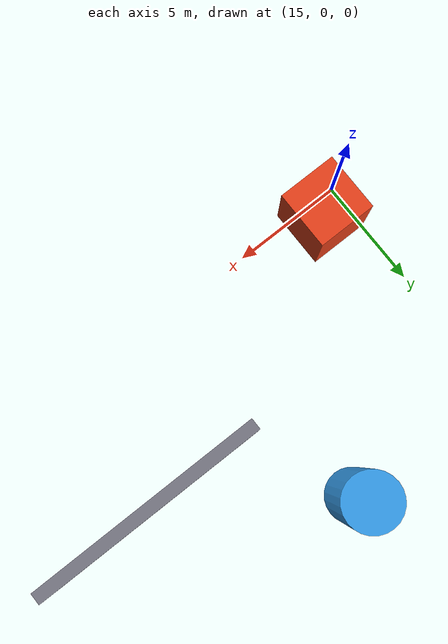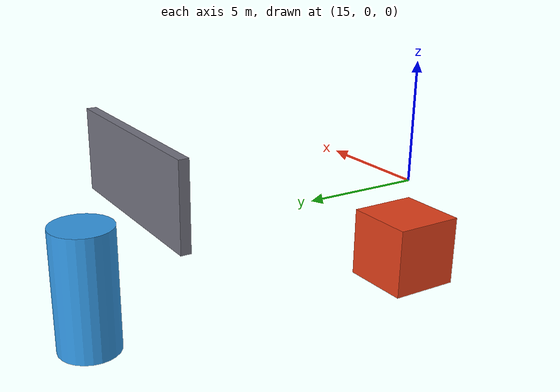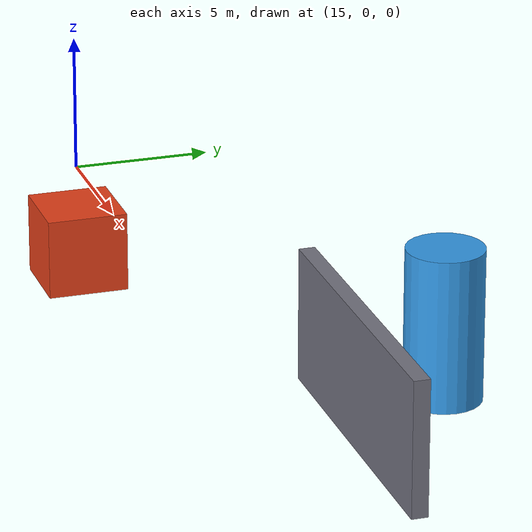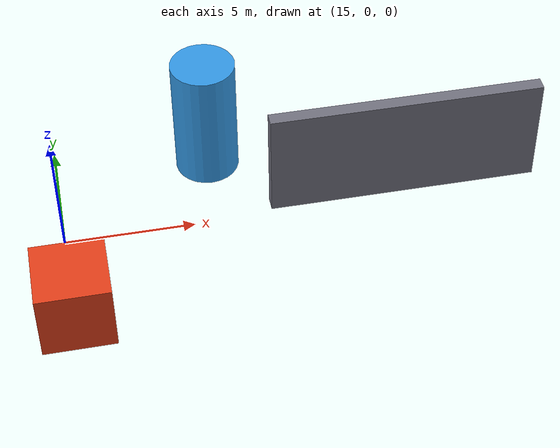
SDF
<?xml version="1.0" ?>
<sdf version="1.6">
  <world name="test_world">
    <physics name="default" type="dartsim">
      <max_step_size>0.001</max_step_size>
      <real_time_factor>1.0</real_time_factor>
    </physics>
    <plugin filename="gz-sim-physics-system" name="gz::sim::systems::Physics"/>
    <plugin filename="gz-sim-user-commands-system" name="gz::sim::systems::UserCommands"/>
    <plugin filename="gz-sim-scene-broadcaster-system" name="gz::sim::systems::SceneBroadcaster"/>
    <plugin filename="gz-sim-buoyancy-system" name="gz::sim::systems::Buoyancy">
      <uniform_fluid_density>1000</uniform_fluid_density>
    </plugin>
    <plugin filename="gz-sim-apply-link-wrench-system" name="gz::sim::systems::ApplyLinkWrench"/>
    <plugin filename="gz-sim-imu-system" name="gz::sim::systems::Imu"/>
    <plugin filename="gz-sim-magnetometer-system" name="gz::sim::systems::Magnetometer"/>
    <plugin filename="gz-sim-sensors-system" name="gz::sim::systems::Sensors">
      <render_engine>ogre2</render_engine>
    </plugin>
    <light type="directional" name="sun">
      <pose>0 0 10 0 0 0</pose>
      <diffuse>1 1 1 1</diffuse>
      <specular>0.5 0.5 0.5 1</specular>
      <attenuation><range>1000</range><constant>0.9</constant><linear>0.01</linear><quadratic>0.001</quadratic></attenuation>
      <direction>-0.5 0.1 -0.9</direction>
    </light>

    <!-- ===== СЦЕНАРИЙ 5: блок ровно по курсу старт(0,0)->WP1(30,0,-3) ===== -->
    <!-- Куб 3×3×3, центр на линии маршрута (15,0,-3). Аппарат должен ОБОЙТИ. -->
    <model name="demo_block"><static>true</static><pose>15.0 0 -3.0 0 0 0</pose><link name="link"><visual name="visual"><geometry><box><size>3.0 3.0 3.0</size></box></geometry><material><ambient>0.9 0.25 0.1 1</ambient><diffuse>0.9 0.25 0.1 1</diffuse></material></visual><collision name="collision"><geometry><box><size>3.0 3.0 3.0</size></box></geometry></collision></link></model>

    <!-- ===== СЦЕНАРИЙ 6: стена поперёк WP1(30,0,-3)->WP2(30,12,-7) ===== -->
    <!-- Стена 12×0.6×5 на (30,6,-3): проверка выбора стороны и прохода мимо. -->
    <model name="demo_wall"><static>true</static><pose>30.0 6.0 -3.0 0 0 0</pose><link name="link"><visual name="visual"><geometry><box><size>12.0 0.6 5.0</size></box></geometry><material><ambient>0.45 0.45 0.5 1</ambient><diffuse>0.45 0.45 0.5 1</diffuse></material></visual><collision name="collision"><geometry><box><size>12.0 0.6 5.0</size></box></geometry></collision></link></model>

    <!-- ===== Доп. блок на 3-м сегменте WP2(30,12,-7)->WP3(15,12,2) ===== -->
    <!-- Цилиндр на (22,12,-5): проверка обхода при смене глубины. -->
    <model name="test_block2"><static>true</static><pose>22.0 12.0 -5.0 0 0 0</pose><link name="link"><visual name="visual"><geometry><cylinder><radius>1.5</radius><length>6.0</length></cylinder></geometry><material><ambient>0.2 0.6 0.9 1</ambient><diffuse>0.2 0.6 0.9 1</diffuse></material></visual><collision name="collision"><geometry><cylinder><radius>1.5</radius><length>6.0</length></cylinder></geometry></collision></link></model>

  </world>
</sdf>
